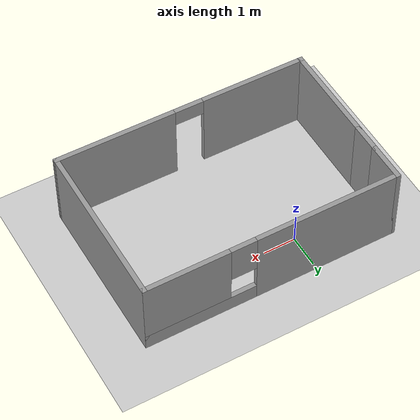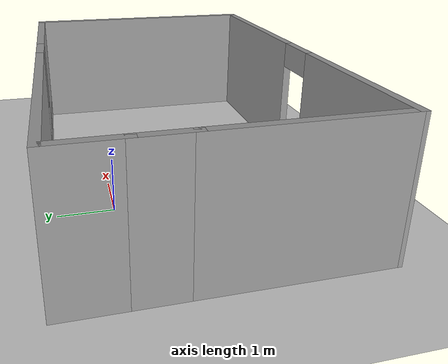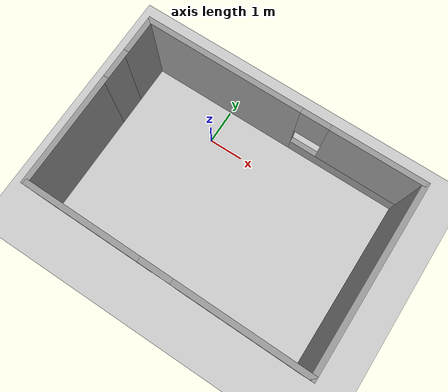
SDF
<sdf version="1.7">
 <world name="default">
  <light name="sun" type="directional">
   <pose>0 0 10 0 -0 0</pose>
   <diffuse>0.8 0.8 0.8 1</diffuse>
   <specular>0.2 0.2 0.2 1</specular>
   <attenuation>
    <range>1000</range>
    <constant>0.9</constant>
    <linear>0.01</linear>
    <quadratic>0.001</quadratic>
   </attenuation>
   <direction>-0.5 0.1 -0.9</direction>
   <spot><inner_angle>0</inner_angle><outer_angle>0</outer_angle><falloff>0</falloff></spot>
  </light>
  <model name="ground_plane">
   <static>1</static>
   <link name="link">
    <collision name="collision">
     <geometry><plane><normal>0 0 1</normal><size>100 100</size></plane></geometry>
     <surface><friction><ode><mu>100</mu><mu2>50</mu2></ode></friction></surface>
    </collision>
    <visual name="visual">
     <cast_shadows>0</cast_shadows>
     <geometry><plane><normal>0 0 1</normal><size>100 100</size></plane></geometry>
     <material>
      <script><uri>file://media/materials/scripts/gazebo.material</uri><name>Gazebo/Grey</name></script>
     </material>
    </visual>
   </link>
  </model>
  <gravity>0 0 -9.8</gravity>
  <magnetic_field>6e-06 2.3e-05 -4.2e-05</magnetic_field>
  <atmosphere type="adiabatic"/>
  <physics type="ode">
   <max_step_size>0.001</max_step_size>
   <real_time_factor>1</real_time_factor>
   <real_time_update_rate>1000</real_time_update_rate>
  </physics>
  <scene><ambient>0.4 0.4 0.4 1</ambient><background>0.7 0.7 0.7 1</background><shadows>1</shadows></scene>
  <audio><device>default</device></audio>
  <spherical_coordinates>
   <surface_model>EARTH_WGS84</surface_model>
   <latitude_deg>0</latitude_deg>
   <longitude_deg>0</longitude_deg>
   <elevation>0</elevation>
   <heading_deg>0</heading_deg>
  </spherical_coordinates>
  <model name="test">
   <pose>1.40499 -1.443 0 0 -0 0</pose>
   <link name="Wall_0">
    <collision name="Wall_0_Collision">
     <geometry><box><size>3.25 0.15 2.5</size></box></geometry>
     <pose>0 0 1.25 0 -0 0</pose>
    </collision>
    <visual name="Wall_0_Visual">
     <pose>0 0 1.25 0 -0 0</pose>
     <geometry><box><size>3.25 0.15 2.5</size></box></geometry>
     <material>
      <script><uri>file://media/materials/scripts/gazebo.material</uri><name>Gazebo/Grey</name></script>
      <ambient>1 1 1 1</ambient>
     </material>
     <meta><layer>0</layer></meta>
    </visual>
    <pose>-3.925 -0.949762 0 0 -0 1.5708</pose>
   </link>
   <link name="Wall_1">
    <collision name="Wall_1_Collision">
     <geometry><box><size>1 0.15 2.5</size></box></geometry>
     <pose>0 0 1.25 0 -0 0</pose>
    </collision>
    <visual name="Wall_1_Visual">
     <pose>0 0 1.25 0 -0 0</pose>
     <geometry><box><size>1 0.15 2.5</size></box></geometry>
     <material>
      <script><uri>file://media/materials/scripts/gazebo.material</uri><name>Gazebo/Grey</name></script>
      <ambient>1 1 1 1</ambient>
     </material>
     <meta><layer>0</layer></meta>
    </visual>
    <pose>-3.925 1.02524 0 0 -0 1.5708</pose>
   </link>
   <link name="Wall_2">
    <collision name="Wall_2_Collision">
     <geometry><box><size>1.25 0.15 2.5</size></box></geometry>
     <pose>0 0 1.25 0 -0 0</pose>
    </collision>
    <visual name="Wall_2_Visual">
     <pose>0 0 1.25 0 -0 0</pose>
     <geometry><box><size>1.25 0.15 2.5</size></box></geometry>
     <material>
      <script><uri>file://media/materials/scripts/gazebo.material</uri><name>Gazebo/Grey</name></script>
      <ambient>1 1 1 1</ambient>
     </material>
     <meta><layer>0</layer></meta>
    </visual>
    <pose>-3.925 2.00024 0 0 -0 1.5708</pose>
   </link>
   <link name="Wall_3">
    <pose>-0 2.55024 0 0 -0 0</pose>
    <visual name="Wall_3_Visual_0">
     <pose>-1.72707 0 1.25 0 -0 0</pose>
     <geometry><box><size>4.54585 0.15 2.5</size></box></geometry>
     <material>
      <script><uri>file://media/materials/scripts/gazebo.material</uri><name>Gazebo/Grey</name></script>
      <ambient>1 1 1 1</ambient>
     </material>
     <meta><layer>0</layer></meta>
    </visual>
    <collision name="Wall_3_Collision_0">
     <geometry><box><size>4.54585 0.15 2.5</size></box></geometry>
     <pose>-1.72707 0 1.25 0 -0 0</pose>
    </collision>
    <visual name="Wall_3_Visual_1">
     <pose>2.27292 0 0.25 0 -0 0</pose>
     <geometry><box><size>3.45415 0.15 0.5</size></box></geometry>
     <material>
      <script><uri>file://media/materials/scripts/gazebo.material</uri><name>Gazebo/Grey</name></script>
      <ambient>1 1 1 1</ambient>
     </material>
     <meta><layer>0</layer></meta>
    </visual>
    <collision name="Wall_3_Collision_1">
     <geometry><box><size>3.45415 0.15 0.5</size></box></geometry>
     <pose>2.27292 0 0.25 0 -0 0</pose>
    </collision>
    <visual name="Wall_3_Visual_2">
     <pose>2.67293 0 1.5 0 -0 0</pose>
     <geometry><box><size>2.65415 0.15 2</size></box></geometry>
     <material>
      <script><uri>file://media/materials/scripts/gazebo.material</uri><name>Gazebo/Grey</name></script>
      <ambient>1 1 1 1</ambient>
     </material>
     <meta><layer>0</layer></meta>
    </visual>
    <collision name="Wall_3_Collision_2">
     <geometry><box><size>2.65415 0.15 2</size></box></geometry>
     <pose>2.67293 0 1.5 0 -0 0</pose>
    </collision>
    <visual name="Wall_3_Visual_3">
     <pose>0.945851 0 1.9 0 -0 0</pose>
     <geometry><box><size>0.8 0.15 1.2</size></box></geometry>
     <material>
      <script><uri>file://media/materials/scripts/gazebo.material</uri><name>Gazebo/Grey</name></script>
      <ambient>1 1 1 1</ambient>
     </material>
     <meta><layer>0</layer></meta>
    </visual>
    <collision name="Wall_3_Collision_3">
     <geometry><box><size>0.8 0.15 1.2</size></box></geometry>
     <pose>0.945851 0 1.9 0 -0 0</pose>
    </collision>
   </link>
   <link name="Wall_4">
    <collision name="Wall_4_Collision">
     <geometry><box><size>5.25 0.15 2.5</size></box></geometry>
     <pose>0 0 1.25 0 -0 0</pose>
    </collision>
    <visual name="Wall_4_Visual">
     <pose>0 0 1.25 0 -0 0</pose>
     <geometry><box><size>5.25 0.15 2.5</size></box></geometry>
     <material>
      <script><uri>file://media/materials/scripts/gazebo.material</uri><name>Gazebo/Grey</name></script>
      <ambient>1 1 1 1</ambient>
     </material>
     <meta><layer>0</layer></meta>
    </visual>
    <pose>3.925 0.000238 0 0 -0 -1.5708</pose>
   </link>
   <link name="Wall_5">
    <pose>-0 -2.52476 0 0 -0 3.13522</pose>
    <visual name="Wall_5_Visual_0">
     <pose>-2.12044 0 1.25 0 -0 0</pose>
     <geometry><box><size>3.75928 0.15 2.5</size></box></geometry>
     <material>
      <script><uri>file://media/materials/scripts/gazebo.material</uri><name>Gazebo/Grey</name></script>
      <ambient>1 1 1 1</ambient>
     </material>
     <meta><layer>0</layer></meta>
    </visual>
    <collision name="Wall_5_Collision_0">
     <geometry><box><size>3.75928 0.15 2.5</size></box></geometry>
     <pose>-2.12044 0 1.25 0 -0 0</pose>
    </collision>
    <visual name="Wall_5_Visual_1">
     <pose>2.32964 0 1.25 0 -0 0</pose>
     <geometry><box><size>3.34088 0.15 2.5</size></box></geometry>
     <material>
      <script><uri>file://media/materials/scripts/gazebo.material</uri><name>Gazebo/Grey</name></script>
      <ambient>1 1 1 1</ambient>
     </material>
     <meta><layer>0</layer></meta>
    </visual>
    <collision name="Wall_5_Collision_1">
     <geometry><box><size>3.34088 0.15 2.5</size></box></geometry>
     <pose>2.32964 0 1.25 0 -0 0</pose>
    </collision>
    <visual name="Wall_5_Visual_2">
     <pose>0.209202 0 2.25 0 -0 0</pose>
     <geometry><box><size>0.9 0.15 0.5</size></box></geometry>
     <material>
      <script><uri>file://media/materials/scripts/gazebo.material</uri><name>Gazebo/Grey</name></script>
      <ambient>1 1 1 1</ambient>
     </material>
     <meta><layer>0</layer></meta>
    </visual>
    <collision name="Wall_5_Collision_2">
     <geometry><box><size>0.9 0.15 0.5</size></box></geometry>
     <pose>0.209202 0 2.25 0 -0 0</pose>
    </collision>
   </link>
   <static>1</static>
  </model>
 </world>
</sdf>
